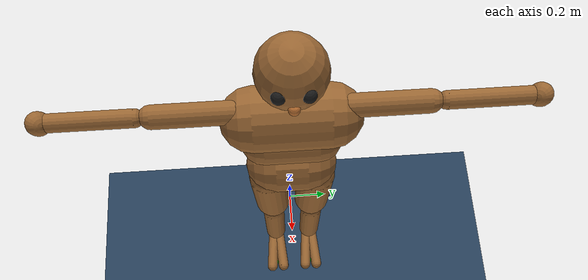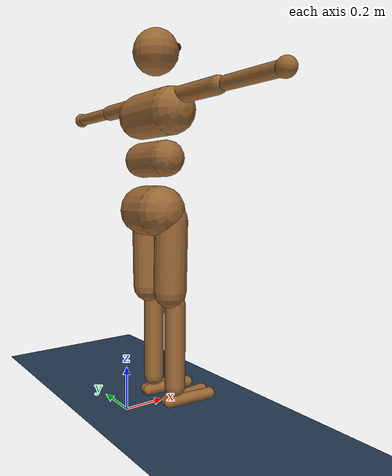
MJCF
<mujoco model="Alfi_Humanoid_Modified"> <!-- Changed model name -->

  <!-- Simulation Options -->
  <option timestep="0.002"/> <!-- Kept timestep from generated, can change back to 0.005 if preferred -->

  <!-- Visual Options -->
  <visual>
    <headlight ambient=".4 .4 .4" diffuse=".8 .8 .8" specular=".1 .1 .1"/>
    <map znear=".01" zfar="30"/> <!-- Adjusted zfar slightly -->
    <quality shadowsize="2048"/>
    <global offwidth="1280" offheight="720"/>
    <rgba haze="0.15 0.25 0.35 1"/> <!-- Added haze like original -->
  </visual>

  <statistic center="0 0 0.7"/> <!-- Copied statistic center -->

  <!-- Assets -->
  <asset>
    <texture type="skybox" builtin="gradient" rgb1=".3 .5 .7" rgb2="0 0 0" width="32" height="512"/> <!-- Original skybox -->
    <!-- Removed 'body' texture, using direct rgba -->
    <texture name="grid" type="2d" builtin="checker" width="512" height="512" rgb1=".1 .2 .3" rgb2=".2 .3 .4"/>
    <material name="grid" texture="grid" texrepeat="1 1" texuniform="true" reflectance=".2"/>
    <!-- Changed geom material to brown -->
    <material name="geom" rgba="0.6 0.4 0.2 1"/>
  </asset>

  <!-- Default Settings - Copied structure from Alfi's Humanoid -->
  <default>
    <motor ctrlrange="-1 1" ctrllimited="true"/>
    <default class="body">
      <!-- geoms -->
      <geom type="capsule" condim="1" friction=".7" solimp=".9 .99 .003" solref=".015 1" material="geom"/>
      <default class="thigh">
        <geom size=".078"/> <!-- Thigh size from original -->
      </default>
      <default class="shin">
         <!-- Shin size/fromto from original -->
        <geom fromto="0 0 0 0 0 -.40182"  size=".05"/>
      </default>
      <default class="foot">
         <!-- Foot capsule size from original -->
        <geom size=".027" />
        <default class="foot1">
          <geom fromto="-.04 -.01 0 .19 -.03 0"/>
        </default>
        <default class="foot2">
          <geom fromto="-.04 .01 0 .19  .03 0"/>
        </default>
      </default>
      <default class="arm_upper">
        <geom size=".04"/>
      </default>
      <default class="arm_lower">
        <geom size=".031"/>
      </default>
      <default class="hand">
        <geom type="sphere" size=".04"/>
      </default>

      <!-- joints -->
      <joint type="hinge" damping="10" stiffness="5" armature=".01" limited="true" solimplimit="0 .99 .01"/>
      <default class="joint_big">
        <joint damping="5" stiffness="10"/>
        <default class="hip_x">
          <joint range="-30 10"/>
        </default>
        <default class="hip_z">
          <joint range="-60 35"/>
        </default>
        <default class="hip_y">
          <joint axis="0 1 0" range="-150 20"/>
        </default>
        <default class="joint_big_stiff">
          <joint stiffness="20"/>
        </default>
      </default>
      <default class="knee">
        <joint pos="0 0 .02" axis="0 -1 0" range="-160 2"/>
      </default>
      <default class="ankle">
        <joint range="-50 50"/>
        <default class="ankle_y">
          <joint pos="0 0 .08" axis="0 1 0" stiffness="62" damping="60"/>
        </default>
        <default class="ankle_x">
          <joint pos="0 0 .04" stiffness="13"/>
        </default>
      </default>
      <default class="shoulder">
        <joint range="-85 60" damping=".2" stiffness="1"/>
      </default>
      <default class="elbow">
        <joint range="-160 0" stiffness="0"/>
      </default>
    </default>
  </default>

  <!-- Model Definition -->
  <worldbody>
    <!-- Floor -->
    <geom name="floor" size="0 0 .05" type="plane" material="grid" condim="3"/>

    <light name="spotlight" mode="targetbodycom" target="torax" diffuse=".8 .8 .8" specular="0.3 0.3 0.3" pos="0 -6 4" cutoff="30"/>

    <!-- Root Body (Torax) - Changed root to torax -->
    <body name="torax" pos="0.165 0 1.396" childclass="body"> <!-- Position from original -->
      <light name="top" pos="0 0 2" mode="trackcom"/>
      <camera name="back" pos="-3 0 1" xyaxes="0 -1 0 1 0 2" mode="trackcom"/>
      <camera name="side" pos="0 -3 1" xyaxes="1 0 0 0 1 2" mode="trackcom"/>
      <!-- track cameras: follow body position exactly (mode="track") -->
      <camera name="track"       pos="-3 0 1"   xyaxes="0 -1 0  1  0 2" mode="track"/>
      <camera name="track_side"  pos="0 -4 1.2" xyaxes="1  0 0  0  0.3 1" mode="track"/>
      <!-- track_front: camera sits 3m in front, looks BACK toward humanoid -->
      <!-- xyaxes: right=(0,1,0)  up=(-1,0,2) => looks in (-2,0,-1) direction -->
      <camera name="track_front" pos="3  0 1"   xyaxes="0  1 0 -1  0 2" mode="track"/>
      <freejoint name="root"/>
      <!-- Torax geom and inertial from original -->
      <geom name="torax" fromto="0 -.12875 0 0 .12875 0" size=".11125"/>
      <inertial pos="0 0 0" mass="16.3625" diaginertia="0.673745 0.1234615 0.673745"/>
      <site name="imu" type="sphere" rgba="0 1 0 .5" pos="0 0 0" size="0.01"/> <!-- Made site visible -->

      <!-- Abdomen (Child of Torax) -->
      <body name="abdomen" pos="0 0 0"> <!-- Position relative to torax (adjust if needed) -->
         <!-- Abdomen geom and inertial from original -->
         <!-- NOTE: Position of geom is relative to THIS body's origin -->
        <geom name="abdomen" fromto="-.01 -.10125 -.215 -.01 .10125 -.215" size=".085"/>
        <inertial pos="-.01 0 -.215" mass="7.4336" diaginertia="0.1841313 0.0326356 .1841313"/>

         <!-- Pelvis (Child of Abdomen) -->
         <!-- NOTE: This body defines the joints connecting to abdomen -->
         <body name="pelvis" pos="-0.02 0 -.46"> <!-- Position from original, relative to abdomen origin -->
            <!-- Abdomen Joints connecting pelvis TO abdomen -->
            <joint name="abdomen_z" pos="0 0 .16" axis="0 0 1" range="-45 3" class="joint_big_stiff"/>
            <joint name="abdomen_y" pos="0 0 .16" axis="0 1 0" range="-75 30" class="joint_big"/>
            <joint name="abdomen_x" pos="0 0 .1" axis="1 0 0" range="-35 35" class="joint_big"/>
            <!-- Pelvis geom and inertial from original -->
            <geom name="butt" fromto="-.0 -.065 0 -.0 .065 0" size=".12"/>
            <inertial pos="0 0 0" mass="13.603889" diaginertia="0.331667 0.130372 0.331667"/>
            <site name="com_accelerometer" type="sphere" rgba="0 1 0 .5" pos="0 0 0" size="0.01"/> <!-- Made site visible -->

            <!-- Right Leg (Child of Pelvis) -->
            <body name="thigh_right" pos="0.04 -.1 -.04"> <!-- Relative to pelvis -->
                <joint name="hip_x_right" axis="1 0 0" class="hip_x" pos="0 0 0.041865"/>
                <joint name="hip_z_right" axis="0 0 1" class="hip_z" pos="0 0 0.041865"/>
                <joint name="hip_y_right" class="hip_y" pos="0 0 0.041865"/>
                <geom name="thigh_right" fromto="0 0 0 0 .01 -.34" class="thigh"/>
                <inertial pos="0 0.005 -0.17" mass="9.6" diaginertia="0.39782263 0.39782263 0.03330608" euler="1.7 0 0"/>
                <body name="shin_right" pos="0.03 .01 -.4"> <!-- Relative to thigh -->
                    <joint name="knee_right" class="knee"/>
                    <geom name="shin_right" class="shin"/>
                    <inertial pos="0 0 -0.20091" mass="4" diaginertia="0.14992478 0.14992478 0.00542691"/>
                    <body name="foot_right" pos="0 0 -.469"> <!-- Relative to shin -->
                        <joint name="ankle_y_right" class="ankle_y" pos="0 0 0.06"/>
                        <joint name="ankle_x_right" class="ankle_x" axis="1 0 0" pos="0 0 0.06"/>
                        <!-- Compound foot from original -->
                        <geom name="foot1_right" class="foot1"/>
                        <geom name="foot2_right" class="foot2"/>
                        <inertial pos="0.075 0 0" mass="1.6" diaginertia="0.009168 0.008528 0.008528"/>
                        <!-- Heel site: x=-0.02 (2cm forward of heel contact at x=-0.04) -->
                        <site name="foot_right_site" pos="-0.02 0 0" size="0.01" rgba="1 0 0 .5"/>
                        <!-- Toe site for Gen2-16 heel-to-toe contact detection -->
                        <site name="toe_right_site" pos="0.17 0 0" size="0.01" rgba="0 1 0 .5"/>
                    </body>
                </body>
            </body>

            <!-- Left Leg (Child of Pelvis) -->
             <body name="thigh_left" pos="0.04 .1 -.04"> <!-- Relative to pelvis -->
                <joint name="hip_x_left" axis="-1 0 0" class="hip_x" pos="0 0 0.041865"/>
                <joint name="hip_z_left" axis="0 0 -1" class="hip_z" pos="0 0 0.041865"/>
                <joint name="hip_y_left" class="hip_y" pos="0 0 0.041865"/>
                <geom name="thigh_left" fromto="0 0 0 0 -.01 -.34" class="thigh"/>
                <inertial pos="0 -0.005 -0.17" mass="9.6" diaginertia="0.39782263 0.39782263 0.03330608" euler="-1.7 0 0"/>
                <body name="shin_left" pos="0.03 -.01 -.4"> <!-- Relative to thigh -->
                    <joint name="knee_left" class="knee"/>
                    <geom name="shin_left" class="shin"/>
                    <inertial pos="0 0 -0.20091" mass="4" diaginertia="0.14992478 0.14992478 0.00542691"/>
                    <body name="foot_left" pos="0 0 -.469"> <!-- Relative to shin -->
                        <joint name="ankle_y_left" class="ankle_y" pos="0 0 0.06"/>
                        <joint name="ankle_x_left" class="ankle_x" axis="-1 0 0" pos="0 0 0.06"/>
                         <!-- Compound foot from original -->
                        <geom name="foot1_left" class="foot1"/>
                        <geom name="foot2_left" class="foot2"/>
                        <inertial pos="0.075 0 0" mass="1.6" diaginertia="0.009168 0.008528 0.008528"/>
                        <!-- Heel site: x=-0.02 (2cm forward of heel contact at x=-0.04) -->
                        <site name="foot_left_site" pos="-0.02 0 0" size="0.01" rgba="1 0 0 .5"/>
                        <!-- Toe site for Gen2-16 heel-to-toe contact detection -->
                        <site name="toe_left_site" pos="0.17 0 0" size="0.01" rgba="0 1 0 .5"/>
                    </body>
                </body>
             </body>
         </body> <!-- End Pelvis -->
      </body> <!-- End Abdomen -->

      <!-- Head (Child of Torax) -->
      <body name="head" pos="0 0 .290"> <!-- Relative to torax -->
          <geom name="head" type="sphere" size=".110"/>
          <!-- Face features on +X (forward) side of head — visual only, no mass/collision -->
          <geom name="eye_right" type="sphere" size=".022" pos=".090 -.042 .025"  rgba="0.1 0.1 0.1 1" contype="0" conaffinity="0" mass="0"/>
          <geom name="eye_left"  type="sphere" size=".022" pos=".090  .042 .025"  rgba="0.1 0.1 0.1 1" contype="0" conaffinity="0" mass="0"/>
          <geom name="nose"      type="sphere" size=".018" pos=".108  .000 -.018" rgba="0.75 0.45 0.2 1" contype="0" conaffinity="0" mass="0"/>
          <camera name="egocentric" pos=".09 0 0" xyaxes="0 -1 0 .1 0 1" fovy="80"/>
          <inertial pos="0 0 0" mass="5.6" diaginertia="0.027104 0.027104 0.027104"/>
          <!-- Neck Joints - Need to define connection TO torax -->
          <!-- These were missing in the original, adding simple ones -->
          <joint name="neck_y" type="hinge" pos="0 0 -0.1" axis="0 1 0" range="-40 40" damping="2"/>
          <joint name="neck_x" type="hinge" pos="0 0 -0.1" axis="1 0 0" range="-30 30" damping="2"/>
      </body>

      <!-- Right Arm (Child of Torax) -->
      <body name="upper_arm_right" pos="0 -.17 .06"> <!-- Relative to torax -->
          <joint name="shoulder1_right" axis="0 0 1" class="shoulder"/>
          <joint name="shoulder2_right" axis="-1 0 0" class="shoulder"/>
          <geom name="upper_arm_right" fromto="0 0 0 0 -.277 0" class="arm_upper"/>
          <inertial pos="0 -0.1385 0" mass="2.4" diaginertia="0.0471207 0.00210599 0.0471207"/>
          <body name="lower_arm_right" pos=".0 -0.318 0"> <!-- Relative to upper arm -->
              <joint name="elbow_right" axis="1 0 0" class="elbow"/>
              <geom name="lower_arm_right" fromto=".0 -.01 .0 .0 -.287 .0" class="arm_lower"/>
              <inertial pos="0 -0.1485 0" mass="1.6" diaginertia="0.02667468 0.00082869 0.02667468"/>
              <body name="hand_right" pos=".0 -.312 0"> <!-- Relative to lower arm -->
                  <geom name="hand_right" zaxis="1 1 1" class="hand"/>
                  <inertial pos="0 0 0" mass="0.8" diaginertia="0.00512 0.00512 0.00512"/>
              </body>
          </body>
      </body>

      <!-- Left Arm (Child of Torax) -->
      <body name="upper_arm_left" pos="0 .17 .06"> <!-- Relative to torax -->
          <joint name="shoulder1_left" axis="0 0 1" class="shoulder"/>
          <joint name="shoulder2_left" axis="1 0 0" class="shoulder"/>
          <geom name="upper_arm_left" fromto="0 0 0 0 0.277 0" class="arm_upper"/>
          <inertial pos="0 0.1385 0" mass="2.4" diaginertia="0.0471207 0.00210599 0.0471207"/>
          <body name="lower_arm_left" pos="0 0.318 0"> <!-- Relative to upper arm -->
              <joint name="elbow_left" axis="1 0 0" class="elbow"/>
              <geom name="lower_arm_left" fromto=".0 .01 .0 0 .287 .0" class="arm_lower"/>
              <inertial pos="0 0.1485 0" mass="1.6" diaginertia="0.02667468 0.00082869 0.02667468"/>
              <body name="hand_left" pos="0 .312 .0"> <!-- Relative to lower arm -->
                  <geom name="hand_left" zaxis="1 -1 1" class="hand"/>
                  <inertial pos="0 0 0" mass="0.8" diaginertia="0.00512 0.00512 0.00512"/>
              </body>
          </body>
      </body>
    </body> <!-- End Torax -->
  </worldbody>

  <!-- Contacts - Copied from original, verify correctness for new structure if needed -->
  <contact>
    <exclude body1="thigh_right" body2="pelvis"/>
    <exclude body1="thigh_left" body2="pelvis"/>
    <exclude body1="foot_left" body2="shin_left"/>
    <exclude body1="shin_left" body2="thigh_left"/>
    <exclude body1="foot_right" body2="shin_right"/>
    <exclude body1="shin_right" body2="thigh_right"/>
    <!-- Added common adjacent limb exclusions -->
    <exclude body1="lower_arm_right" body2="upper_arm_right"/>
    <exclude body1="hand_right" body2="lower_arm_right"/>
    <exclude body1="lower_arm_left" body2="upper_arm_left"/>
    <exclude body1="hand_left" body2="lower_arm_left"/>
    <exclude body1="torax" body2="abdomen"/>
    <exclude body1="abdomen" body2="pelvis"/>
    <exclude body1="torax" body2="head"/>
    <!-- Exclude feet geoms if they might overlap -->
  </contact>

  <!-- Tendons - Copied from original -->
  <tendon>
    <fixed name="hamstring_right" limited="true" range="-0.3 2">
      <joint joint="hip_y_right" coef=".5"/>
      <joint joint="knee_right" coef="-.5"/>
    </fixed>
    <fixed name="hamstring_left" limited="true" range="-0.3 2">
      <joint joint="hip_y_left" coef=".5"/>
      <joint joint="knee_left" coef="-.5"/>
    </fixed>
  </tendon>

  <!-- Actuators - Copied gears and joint names from original -->
  <actuator>
    <motor name="abdomen_z"       gear="100"  joint="abdomen_z"/>
    <motor name="abdomen_y"       gear="100"  joint="abdomen_y"/>
    <motor name="abdomen_x"       gear="100"  joint="abdomen_x"/>
    <motor name="hip_x_right"     gear="100"  joint="hip_x_right"/>
    <motor name="hip_z_right"     gear="100"  joint="hip_z_right"/>
    <motor name="hip_y_right"     gear="300" joint="hip_y_right"/>
    <motor name="knee_right"      gear="200"  joint="knee_right"/>
    <motor name="ankle_y_right"   gear="50"  joint="ankle_y_right"/>
    <motor name="ankle_x_right"   gear="50"  joint="ankle_x_right"/>
    <motor name="hip_x_left"      gear="100"  joint="hip_x_left"/>
    <motor name="hip_z_left"      gear="100"  joint="hip_z_left"/>
    <motor name="hip_y_left"      gear="300" joint="hip_y_left"/>
    <motor name="knee_left"       gear="200"  joint="knee_left"/>
    <motor name="ankle_y_left"    gear="50"  joint="ankle_y_left"/>
    <motor name="ankle_x_left"    gear="50"  joint="ankle_x_left"/>
    <motor name="shoulder1_right" gear="25"  joint="shoulder1_right"/>
    <motor name="shoulder2_right" gear="25"  joint="shoulder2_right"/>
    <motor name="elbow_right"     gear="25"  joint="elbow_right"/>
    <motor name="shoulder1_left"  gear="25"  joint="shoulder1_left"/>
    <motor name="shoulder2_left"  gear="25"  joint="shoulder2_left"/>
    <motor name="elbow_left"      gear="25"  joint="elbow_left"/>
    <!-- Added motors for neck joints -->
    <motor name="neck_y" gear="10" joint="neck_y"/>
    <motor name="neck_x" gear="10" joint="neck_x"/>
  </actuator>

  <!-- Sensors - Defined at top level -->
  <sensor>
    <!-- IMU Sensors (use chest_site if chest body exists, otherwise torax?) -->
    <!-- Let's attach to torax imu site -->
    <accelerometer name="accelerometer" site="imu"/>
    <gyro name="gyro" site="imu"/>
    <!-- Alternative: Attach to pelvis com_accelerometer site -->

    <!-- Foot Contact Sensors (linked to foot sites) -->
    <touch name="foot_right_touch" site="foot_right_site"/>
    <touch name="foot_left_touch" site="foot_left_site"/>
    <!-- Toe Contact Sensors (Gen2-16: heel-to-toe roll detection) -->
    <touch name="toe_right_touch" site="toe_right_site"/>
    <touch name="toe_left_touch" site="toe_left_site"/>
  </sensor>

</mujoco>
